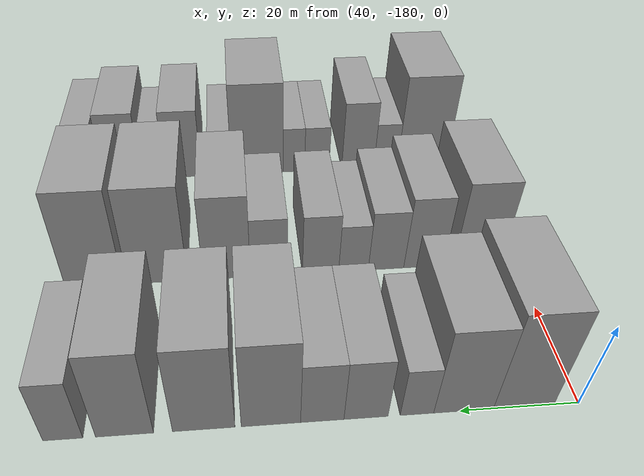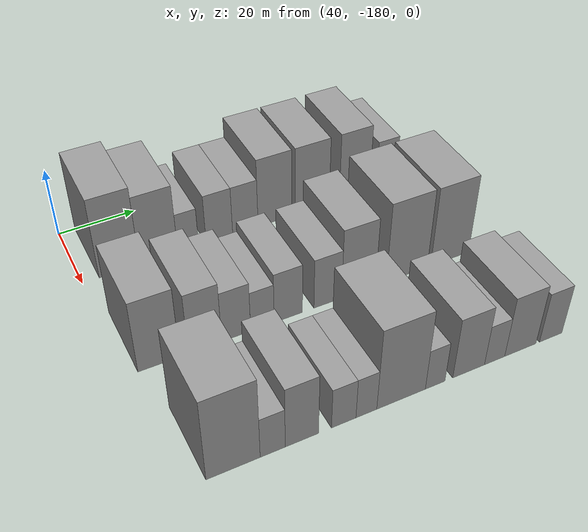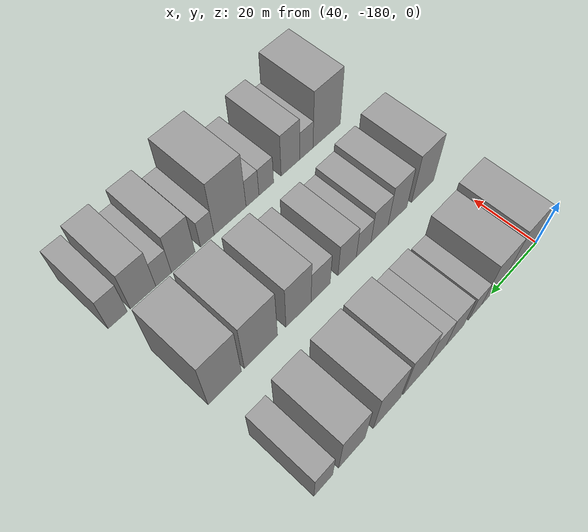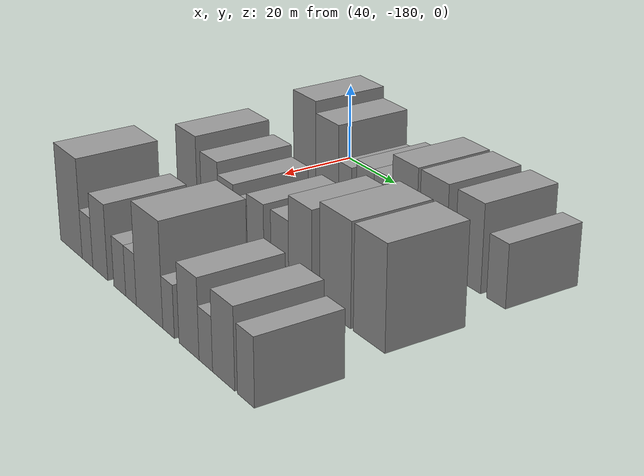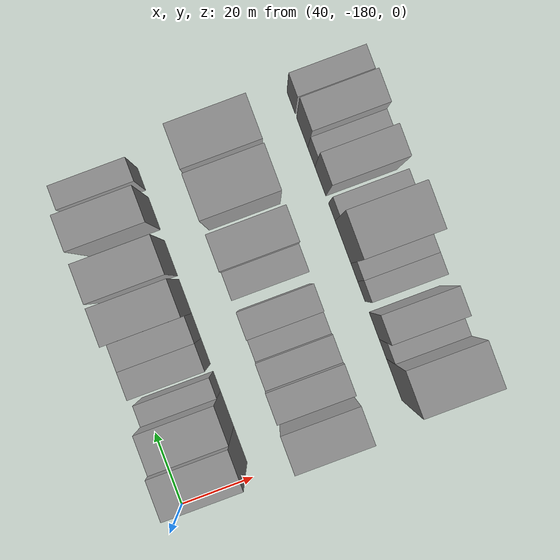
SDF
<sdf version="1.6">
 <world name="default">
  <model name="building_19">
   <static>1</static>
   <pose>50.0000 -170.6931 0 0.000000 0.000000 0.000000</pose>
   <link name="link">
    <pose>0 0 12.00 0 0 0</pose>
    <collision name="collision"><geometry><box><size>20.0000 10.2297 24.0000</size></box></geometry></collision>
    <visual name="visual">
     <cast_shadows>0</cast_shadows>
     <geometry><box><size>20.0000 10.2297 24.0000</size></box></geometry>
     <material>
      <script>
       <uri>model://grey_wall/materials/scripts</uri>
       <uri>model://grey_wall/materials/textures</uri>
       <name>vrc/grey_wall</name>
      </script>
     </material>
    </visual>
   </link>
  </model>
  <model name="building_20">
   <static>1</static>
   <pose>50.0000 -160.5894 0 0.000000 0.000000 0.000000</pose>
   <link name="link">
    <pose>0 0 10.50 0 0 0</pose>
    <collision name="collision"><geometry><box><size>20.0000 9.9778 21.0000</size></box></geometry></collision>
    <visual name="visual">
     <cast_shadows>0</cast_shadows>
     <geometry><box><size>20.0000 9.9778 21.0000</size></box></geometry>
     <material>
      <script>
       <uri>model://grey_wall/materials/scripts</uri>
       <uri>model://grey_wall/materials/textures</uri>
       <name>vrc/grey_wall</name>
      </script>
     </material>
    </visual>
   </link>
  </model>
  <model name="building_21">
   <static>1</static>
   <pose>50.0000 -152.8348 0 0.000000 0.000000 0.000000</pose>
   <link name="link">
    <pose>0 0 6.00 0 0 0</pose>
    <collision name="collision"><geometry><box><size>20.0000 5.5313 12.0000</size></box></geometry></collision>
    <visual name="visual">
     <cast_shadows>0</cast_shadows>
     <geometry><box><size>20.0000 5.5313 12.0000</size></box></geometry>
     <material>
      <script>
       <uri>model://grey_wall/materials/scripts</uri>
       <uri>model://grey_wall/materials/textures</uri>
       <name>vrc/grey_wall</name>
      </script>
     </material>
    </visual>
   </link>
  </model>
  <model name="building_22">
   <static>1</static>
   <pose>50.0000 -144.4515 0 0.000000 0.000000 0.000000</pose>
   <link name="link">
    <pose>0 0 7.50 0 0 0</pose>
    <collision name="collision"><geometry><box><size>20.0000 7.2354 15.0000</size></box></geometry></collision>
    <visual name="visual">
     <cast_shadows>0</cast_shadows>
     <geometry><box><size>20.0000 7.2354 15.0000</size></box></geometry>
     <material>
      <script>
       <uri>model://grey_wall/materials/scripts</uri>
       <uri>model://grey_wall/materials/textures</uri>
       <name>vrc/grey_wall</name>
      </script>
     </material>
    </visual>
   </link>
  </model>
  <model name="building_23">
   <static>1</static>
   <pose>50.0000 -137.3063 0 0.000000 0.000000 0.000000</pose>
   <link name="link">
    <pose>0 0 7.50 0 0 0</pose>
    <collision name="collision"><geometry><box><size>20.0000 7.0550 15.0000</size></box></geometry></collision>
    <visual name="visual">
     <cast_shadows>0</cast_shadows>
     <geometry><box><size>20.0000 7.0550 15.0000</size></box></geometry>
     <material>
      <script>
       <uri>model://grey_wall/materials/scripts</uri>
       <uri>model://grey_wall/materials/textures</uri>
       <name>vrc/grey_wall</name>
      </script>
     </material>
    </visual>
   </link>
  </model>
  <model name="building_24">
   <static>1</static>
   <pose>50.0000 -128.9969 0 0.000000 0.000000 0.000000</pose>
   <link name="link">
    <pose>0 0 10.50 0 0 0</pose>
    <collision name="collision"><geometry><box><size>20.0000 9.5638 21.0000</size></box></geometry></collision>
    <visual name="visual">
     <cast_shadows>0</cast_shadows>
     <geometry><box><size>20.0000 9.5638 21.0000</size></box></geometry>
     <material>
      <script>
       <uri>model://grey_wall/materials/scripts</uri>
       <uri>model://grey_wall/materials/textures</uri>
       <name>vrc/grey_wall</name>
      </script>
     </material>
    </visual>
   </link>
  </model>
  <model name="building_25">
   <static>1</static>
   <pose>50.0000 -118.2344 0 0.000000 0.000000 0.000000</pose>
   <link name="link">
    <pose>0 0 10.50 0 0 0</pose>
    <collision name="collision"><geometry><box><size>20.0000 9.9613 21.0000</size></box></geometry></collision>
    <visual name="visual">
     <cast_shadows>0</cast_shadows>
     <geometry><box><size>20.0000 9.9613 21.0000</size></box></geometry>
     <material>
      <script>
       <uri>model://grey_wall/materials/scripts</uri>
       <uri>model://grey_wall/materials/textures</uri>
       <name>vrc/grey_wall</name>
      </script>
     </material>
    </visual>
   </link>
  </model>
  <model name="building_26">
   <static>1</static>
   <pose>50.0000 -105.6971 0 0.000000 0.000000 0.000000</pose>
   <link name="link">
    <pose>0 0 10.50 0 0 0</pose>
    <collision name="collision"><geometry><box><size>20.0000 9.1133 21.0000</size></box></geometry></collision>
    <visual name="visual">
     <cast_shadows>0</cast_shadows>
     <geometry><box><size>20.0000 9.1133 21.0000</size></box></geometry>
     <material>
      <script>
       <uri>model://grey_wall/materials/scripts</uri>
       <uri>model://grey_wall/materials/textures</uri>
       <name>vrc/grey_wall</name>
      </script>
     </material>
    </visual>
   </link>
  </model>
  <model name="building_27">
   <static>1</static>
   <pose>50.0000 -96.0269 0 0.000000 0.000000 0.000000</pose>
   <link name="link">
    <pose>0 0 7.50 0 0 0</pose>
    <collision name="collision"><geometry><box><size>20.0000 6.2271 15.0000</size></box></geometry></collision>
    <visual name="visual">
     <cast_shadows>0</cast_shadows>
     <geometry><box><size>20.0000 6.2271 15.0000</size></box></geometry>
     <material>
      <script>
       <uri>model://grey_wall/materials/scripts</uri>
       <uri>model://grey_wall/materials/textures</uri>
       <name>vrc/grey_wall</name>
      </script>
     </material>
    </visual>
   </link>
  </model>
  <model name="building_101">
   <static>1</static>
   <pose>82.0000 -172.5107 0 0.000000 0.000000 0.000000</pose>
   <link name="link">
    <pose>0 0 10.50 0 0 0</pose>
    <collision name="collision"><geometry><box><size>20.0000 9.7541 21.0000</size></box></geometry></collision>
    <visual name="visual">
     <cast_shadows>0</cast_shadows>
     <geometry><box><size>20.0000 9.7541 21.0000</size></box></geometry>
     <material>
      <script>
       <uri>model://grey_wall/materials/scripts</uri>
       <uri>model://grey_wall/materials/textures</uri>
       <name>vrc/grey_wall</name>
      </script>
     </material>
    </visual>
   </link>
  </model>
  <model name="building_102">
   <static>1</static>
   <pose>82.0000 -161.6090 0 0.000000 0.000000 0.000000</pose>
   <link name="link">
    <pose>0 0 9.00 0 0 0</pose>
    <collision name="collision"><geometry><box><size>20.0000 8.0494 18.0000</size></box></geometry></collision>
    <visual name="visual">
     <cast_shadows>0</cast_shadows>
     <geometry><box><size>20.0000 8.0494 18.0000</size></box></geometry>
     <material>
      <script>
       <uri>model://grey_wall/materials/scripts</uri>
       <uri>model://grey_wall/materials/textures</uri>
       <name>vrc/grey_wall</name>
      </script>
     </material>
    </visual>
   </link>
  </model>
  <model name="building_103">
   <static>1</static>
   <pose>82.0000 -154.0170 0 0.000000 0.000000 0.000000</pose>
   <link name="link">
    <pose>0 0 7.50 0 0 0</pose>
    <collision name="collision"><geometry><box><size>20.0000 7.1347 15.0000</size></box></geometry></collision>
    <visual name="visual">
     <cast_shadows>0</cast_shadows>
     <geometry><box><size>20.0000 7.1347 15.0000</size></box></geometry>
     <material>
      <script>
       <uri>model://grey_wall/materials/scripts</uri>
       <uri>model://grey_wall/materials/textures</uri>
       <name>vrc/grey_wall</name>
      </script>
     </material>
    </visual>
   </link>
  </model>
  <model name="building_104">
   <static>1</static>
   <pose>82.0000 -147.4935 0 0.000000 0.000000 0.000000</pose>
   <link name="link">
    <pose>0 0 6.00 0 0 0</pose>
    <collision name="collision"><geometry><box><size>20.0000 5.9122 12.0000</size></box></geometry></collision>
    <visual name="visual">
     <cast_shadows>0</cast_shadows>
     <geometry><box><size>20.0000 5.9122 12.0000</size></box></geometry>
     <material>
      <script>
       <uri>model://grey_wall/materials/scripts</uri>
       <uri>model://grey_wall/materials/textures</uri>
       <name>vrc/grey_wall</name>
      </script>
     </material>
    </visual>
   </link>
  </model>
  <model name="building_105">
   <static>1</static>
   <pose>82.0000 -140.9353 0 0.000000 0.000000 0.000000</pose>
   <link name="link">
    <pose>0 0 7.50 0 0 0</pose>
    <collision name="collision"><geometry><box><size>20.0000 7.2043 15.0000</size></box></geometry></collision>
    <visual name="visual">
     <cast_shadows>0</cast_shadows>
     <geometry><box><size>20.0000 7.2043 15.0000</size></box></geometry>
     <material>
      <script>
       <uri>model://grey_wall/materials/scripts</uri>
       <uri>model://grey_wall/materials/textures</uri>
       <name>vrc/grey_wall</name>
      </script>
     </material>
    </visual>
   </link>
  </model>
  <model name="building_106">
   <static>1</static>
   <pose>82.0000 -130.6983 0 0.000000 0.000000 0.000000</pose>
   <link name="link">
    <pose>0 0 7.50 0 0 0</pose>
    <collision name="collision"><geometry><box><size>20.0000 7.2697 15.0000</size></box></geometry></collision>
    <visual name="visual">
     <cast_shadows>0</cast_shadows>
     <geometry><box><size>20.0000 7.2697 15.0000</size></box></geometry>
     <material>
      <script>
       <uri>model://grey_wall/materials/scripts</uri>
       <uri>model://grey_wall/materials/textures</uri>
       <name>vrc/grey_wall</name>
      </script>
     </material>
    </visual>
   </link>
  </model>
  <model name="building_107">
   <static>1</static>
   <pose>82.0000 -122.4626 0 0.000000 0.000000 0.000000</pose>
   <link name="link">
    <pose>0 0 10.50 0 0 0</pose>
    <collision name="collision"><geometry><box><size>20.0000 9.2019 21.0000</size></box></geometry></collision>
    <visual name="visual">
     <cast_shadows>0</cast_shadows>
     <geometry><box><size>20.0000 9.2019 21.0000</size></box></geometry>
     <material>
      <script>
       <uri>model://grey_wall/materials/scripts</uri>
       <uri>model://grey_wall/materials/textures</uri>
       <name>vrc/grey_wall</name>
      </script>
     </material>
    </visual>
   </link>
  </model>
  <model name="building_108">
   <static>1</static>
   <pose>82.0000 -109.0988 0 0.000000 0.000000 0.000000</pose>
   <link name="link">
    <pose>0 0 12.00 0 0 0</pose>
    <collision name="collision"><geometry><box><size>20.0000 11.5256 24.0000</size></box></geometry></collision>
    <visual name="visual">
     <cast_shadows>0</cast_shadows>
     <geometry><box><size>20.0000 11.5256 24.0000</size></box></geometry>
     <material>
      <script>
       <uri>model://grey_wall/materials/scripts</uri>
       <uri>model://grey_wall/materials/textures</uri>
       <name>vrc/grey_wall</name>
      </script>
     </material>
    </visual>
   </link>
  </model>
  <model name="building_109">
   <static>1</static>
   <pose>82.0000 -96.8106 0 0.000000 0.000000 0.000000</pose>
   <link name="link">
    <pose>0 0 12.00 0 0 0</pose>
    <collision name="collision"><geometry><box><size>20.0000 11.0509 24.0000</size></box></geometry></collision>
    <visual name="visual">
     <cast_shadows>0</cast_shadows>
     <geometry><box><size>20.0000 11.0509 24.0000</size></box></geometry>
     <material>
      <script>
       <uri>model://grey_wall/materials/scripts</uri>
       <uri>model://grey_wall/materials/textures</uri>
       <name>vrc/grey_wall</name>
      </script>
     </material>
    </visual>
   </link>
  </model>
  <model name="building_179">
   <static>1</static>
   <pose>114.0000 -168.8517 0 0.000000 0.000000 0.000000</pose>
   <link name="link">
    <pose>0 0 12.00 0 0 0</pose>
    <collision name="collision"><geometry><box><size>20.0000 11.7345 24.0000</size></box></geometry></collision>
    <visual name="visual">
     <cast_shadows>0</cast_shadows>
     <geometry><box><size>20.0000 11.7345 24.0000</size></box></geometry>
     <material>
      <script>
       <uri>model://grey_wall/materials/scripts</uri>
       <uri>model://grey_wall/materials/textures</uri>
       <name>vrc/grey_wall</name>
      </script>
     </material>
    </visual>
   </link>
  </model>
  <model name="building_180">
   <static>1</static>
   <pose>114.0000 -160.1956 0 0.000000 0.000000 0.000000</pose>
   <link name="link">
    <pose>0 0 6.00 0 0 0</pose>
    <collision name="collision"><geometry><box><size>20.0000 5.5778 12.0000</size></box></geometry></collision>
    <visual name="visual">
     <cast_shadows>0</cast_shadows>
     <geometry><box><size>20.0000 5.5778 12.0000</size></box></geometry>
     <material>
      <script>
       <uri>model://grey_wall/materials/scripts</uri>
       <uri>model://grey_wall/materials/textures</uri>
       <name>vrc/grey_wall</name>
      </script>
     </material>
    </visual>
   </link>
  </model>
  <model name="building_181">
   <static>1</static>
   <pose>114.0000 -153.6212 0 0.000000 0.000000 0.000000</pose>
   <link name="link">
    <pose>0 0 9.00 0 0 0</pose>
    <collision name="collision"><geometry><box><size>20.0000 7.5711 18.0000</size></box></geometry></collision>
    <visual name="visual">
     <cast_shadows>0</cast_shadows>
     <geometry><box><size>20.0000 7.5711 18.0000</size></box></geometry>
     <material>
      <script>
       <uri>model://grey_wall/materials/scripts</uri>
       <uri>model://grey_wall/materials/textures</uri>
       <name>vrc/grey_wall</name>
      </script>
     </material>
    </visual>
   </link>
  </model>
  <model name="building_182">
   <static>1</static>
   <pose>114.0000 -143.9572 0 0.000000 0.000000 0.000000</pose>
   <link name="link">
    <pose>0 0 6.00 0 0 0</pose>
    <collision name="collision"><geometry><box><size>20.0000 5.7568 12.0000</size></box></geometry></collision>
    <visual name="visual">
     <cast_shadows>0</cast_shadows>
     <geometry><box><size>20.0000 5.7568 12.0000</size></box></geometry>
     <material>
      <script>
       <uri>model://grey_wall/materials/scripts</uri>
       <uri>model://grey_wall/materials/textures</uri>
       <name>vrc/grey_wall</name>
      </script>
     </material>
    </visual>
   </link>
  </model>
  <model name="building_183">
   <static>1</static>
   <pose>114.0000 -138.5827 0 0.000000 0.000000 0.000000</pose>
   <link name="link">
    <pose>0 0 6.00 0 0 0</pose>
    <collision name="collision"><geometry><box><size>20.0000 4.9924 12.0000</size></box></geometry></collision>
    <visual name="visual">
     <cast_shadows>0</cast_shadows>
     <geometry><box><size>20.0000 4.9924 12.0000</size></box></geometry>
     <material>
      <script>
       <uri>model://grey_wall/materials/scripts</uri>
       <uri>model://grey_wall/materials/textures</uri>
       <name>vrc/grey_wall</name>
      </script>
     </material>
    </visual>
   </link>
  </model>
  <model name="building_184">
   <static>1</static>
   <pose>114.0000 -130.1003 0 0.000000 0.000000 0.000000</pose>
   <link name="link">
    <pose>0 0 12.00 0 0 0</pose>
    <collision name="collision"><geometry><box><size>20.0000 11.9723 24.0000</size></box></geometry></collision>
    <visual name="visual">
     <cast_shadows>0</cast_shadows>
     <geometry><box><size>20.0000 11.9723 24.0000</size></box></geometry>
     <material>
      <script>
       <uri>model://grey_wall/materials/scripts</uri>
       <uri>model://grey_wall/materials/textures</uri>
       <name>vrc/grey_wall</name>
      </script>
     </material>
    </visual>
   </link>
  </model>
  <model name="building_185">
   <static>1</static>
   <pose>114.0000 -121.6283 0 0.000000 0.000000 0.000000</pose>
   <link name="link">
    <pose>0 0 6.00 0 0 0</pose>
    <collision name="collision"><geometry><box><size>20.0000 4.9717 12.0000</size></box></geometry></collision>
    <visual name="visual">
     <cast_shadows>0</cast_shadows>
     <geometry><box><size>20.0000 4.9717 12.0000</size></box></geometry>
     <material>
      <script>
       <uri>model://grey_wall/materials/scripts</uri>
       <uri>model://grey_wall/materials/textures</uri>
       <name>vrc/grey_wall</name>
      </script>
     </material>
    </visual>
   </link>
  </model>
  <model name="building_186">
   <static>1</static>
   <pose>114.0000 -113.0112 0 0.000000 0.000000 0.000000</pose>
   <link name="link">
    <pose>0 0 9.00 0 0 0</pose>
    <collision name="collision"><geometry><box><size>20.0000 8.2626 18.0000</size></box></geometry></collision>
    <visual name="visual">
     <cast_shadows>0</cast_shadows>
     <geometry><box><size>20.0000 8.2626 18.0000</size></box></geometry>
     <material>
      <script>
       <uri>model://grey_wall/materials/scripts</uri>
       <uri>model://grey_wall/materials/textures</uri>
       <name>vrc/grey_wall</name>
      </script>
     </material>
    </visual>
   </link>
  </model>
  <model name="building_187">
   <static>1</static>
   <pose>114.0000 -106.1883 0 0.000000 0.000000 0.000000</pose>
   <link name="link">
    <pose>0 0 6.00 0 0 0</pose>
    <collision name="collision"><geometry><box><size>20.0000 5.3832 12.0000</size></box></geometry></collision>
    <visual name="visual">
     <cast_shadows>0</cast_shadows>
     <geometry><box><size>20.0000 5.3832 12.0000</size></box></geometry>
     <material>
      <script>
       <uri>model://grey_wall/materials/scripts</uri>
       <uri>model://grey_wall/materials/textures</uri>
       <name>vrc/grey_wall</name>
      </script>
     </material>
    </visual>
   </link>
  </model>
  <model name="building_188">
   <static>1</static>
   <pose>114.0000 -99.2400 0 0.000000 0.000000 0.000000</pose>
   <link name="link">
    <pose>0 0 9.00 0 0 0</pose>
    <collision name="collision"><geometry><box><size>20.0000 8.5134 18.0000</size></box></geometry></collision>
    <visual name="visual">
     <cast_shadows>0</cast_shadows>
     <geometry><box><size>20.0000 8.5134 18.0000</size></box></geometry>
     <material>
      <script>
       <uri>model://grey_wall/materials/scripts</uri>
       <uri>model://grey_wall/materials/textures</uri>
       <name>vrc/grey_wall</name>
      </script>
     </material>
    </visual>
   </link>
  </model>
  <model name="building_189">
   <static>1</static>
   <pose>114.0000 -90.8680 0 0.000000 0.000000 0.000000</pose>
   <link name="link">
    <pose>0 0 7.50 0 0 0</pose>
    <collision name="collision"><geometry><box><size>20.0000 6.2306 15.0000</size></box></geometry></collision>
    <visual name="visual">
     <cast_shadows>0</cast_shadows>
     <geometry><box><size>20.0000 6.2306 15.0000</size></box></geometry>
     <material>
      <script>
       <uri>model://grey_wall/materials/scripts</uri>
       <uri>model://grey_wall/materials/textures</uri>
       <name>vrc/grey_wall</name>
      </script>
     </material>
    </visual>
   </link>
  </model>
 </world>
</sdf>
